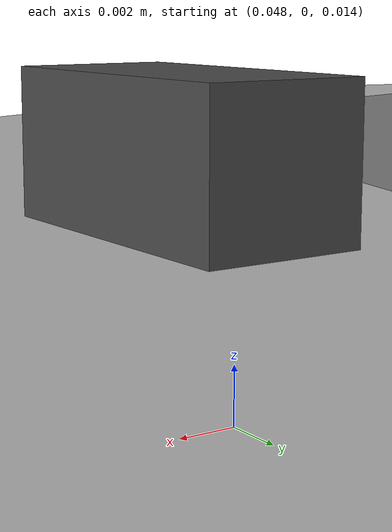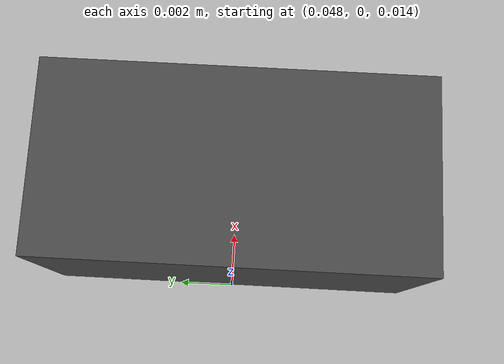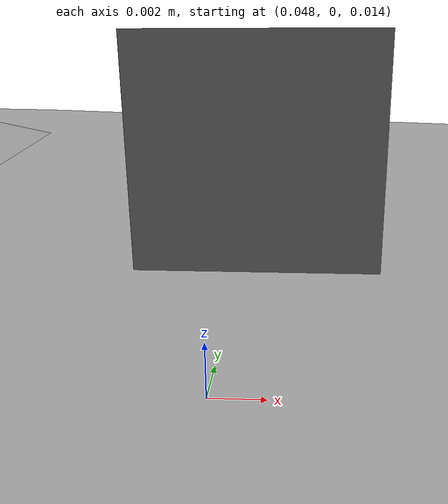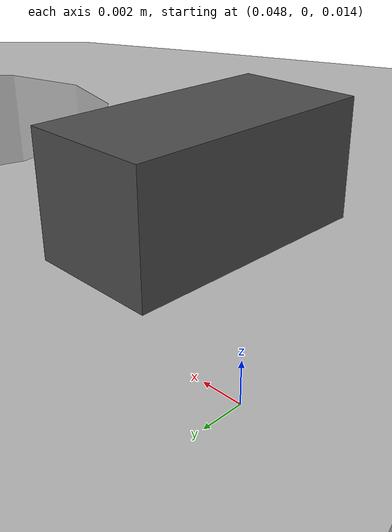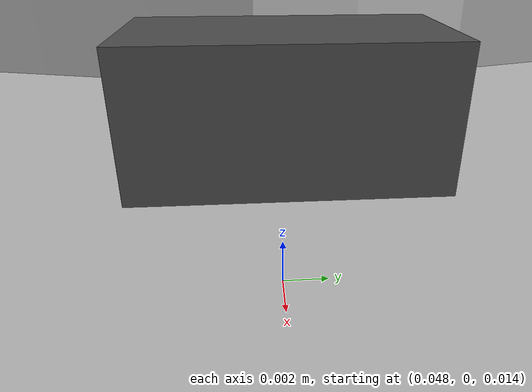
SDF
<?xml version="1.0" ?>
<sdf version="1.6">
  <model name="gasket_part_ariac">
    <link name="link">
      <inertial>
        <pose>0 0 0.010173 0 0 0</pose>
        <mass>0.5</mass>
        <inertia>
          <ixx>0.00054</ixx>
          <ixy>0</ixy>
          <ixz>0</ixz>
          <iyy>0.002</iyy>
          <iyz>0</iyz>
          <izz>0.0025</izz>
        </inertia>
      </inertial>

      <collision name="collision_1">
        <geometry>
           <mesh>
             <scale>0.6 0.6 0.6</scale>
             <uri>model://gasket_part_ariac/meshes/gasket.dae</uri>
           </mesh>
        </geometry>
        <surface>
          <contact>
            <ode>
              <max_vel>0.0</max_vel>
              <min_depth>0.001</min_depth>
            </ode>
          </contact>
        </surface>
      </collision>

      <visual name="visual">
         <geometry>
           <mesh>
             <scale>0.6 0.6 0.6</scale>
             <uri>model://gasket_part_ariac/meshes/gasket.dae</uri>
           </mesh>
         </geometry>
        <material>
          <script>
            <uri>model://arm_part_ariac/materials/scripts</uri>
            <uri>model://arm_part_ariac/materials/textures</uri>
            <name>ArmPart/Diffuse</name>
          </script>
        </material>
       </visual>

      <collision name="collision_asymmetric_mark">
        <pose>0.05 0.0 0.02 0 0 0</pose>
        <max_contacts>5</max_contacts>
         <geometry>
          <box>
            <size>0.005 0.01 0.01</size>
          </box>
         </geometry>
        <surface>
          <contact>
            <ode>
              <max_vel>0.0</max_vel>
              <min_depth>0.001</min_depth>
            </ode>
          </contact>
        </surface>
      </collision>

      <visual name="visual_asymmetric_mark">
        <pose>0.05 0.0 0.02 0 0 0</pose>
         <geometry>
          <box>
            <size>0.005 0.01 0.01</size>
          </box>
         </geometry>
        <material>
          <lighting>1</lighting>
          <script>
            <uri>file://media/materials/scripts/gazebo.material</uri>
            <name>Gazebo/DarkGrey</name>
          </script>
          <emissive>0 0 0 1</emissive>
        </material>
      </visual>
    </link>
  </model>
</sdf>
